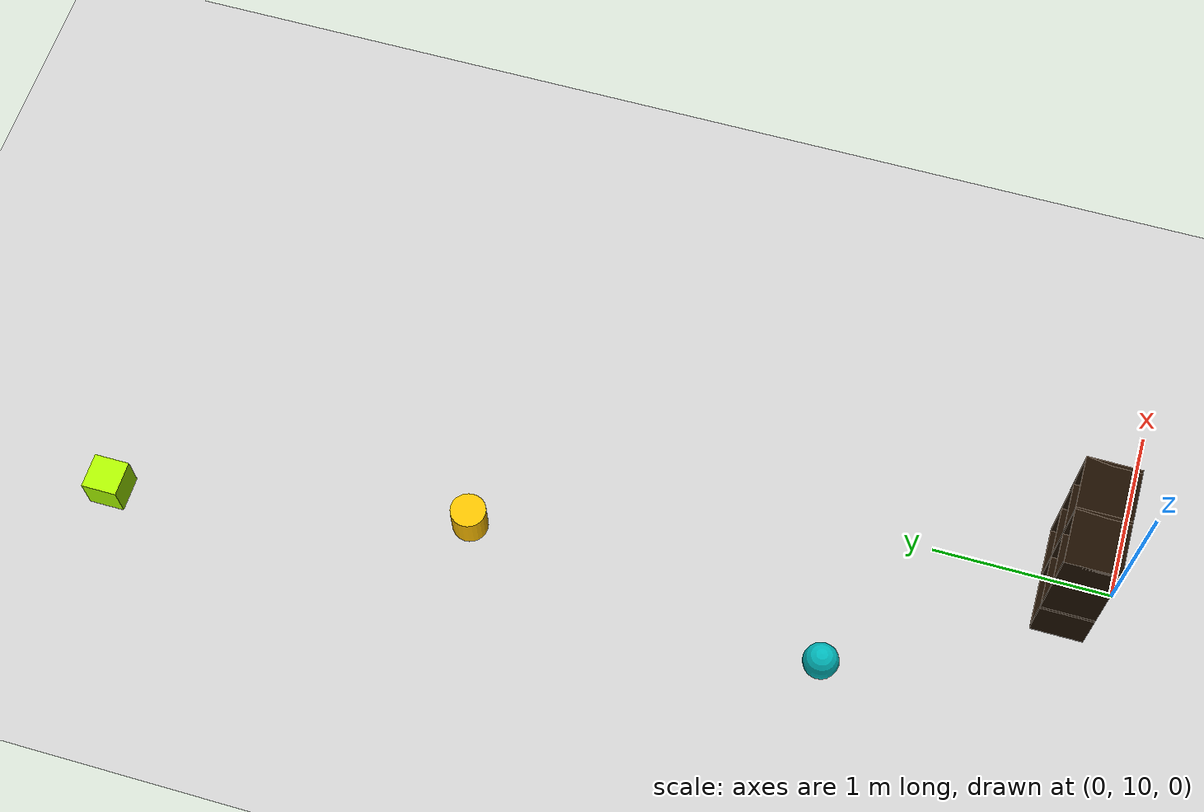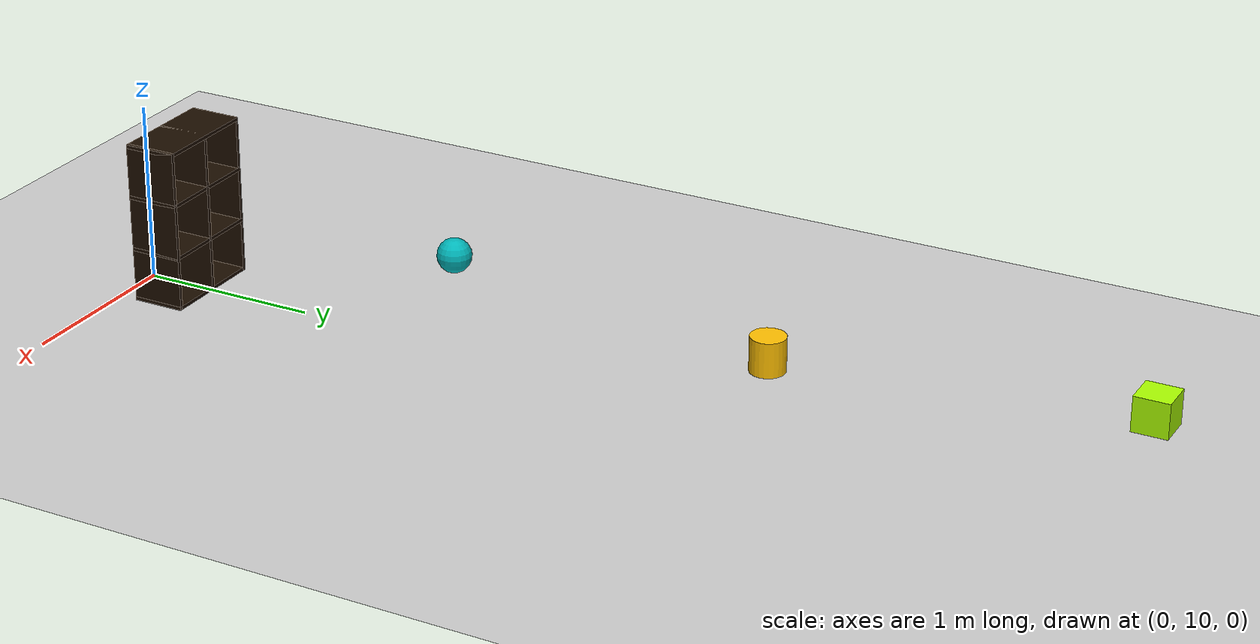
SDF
<sdf version="1.6">
 <world name="default">
  <model name="ground_plane">
   <static>1</static>
   <link name="link">
    <collision name="collision">
     <geometry><plane><normal>0 0 1</normal><size>100 100</size></plane></geometry>
     <surface><friction><ode><mu>100</mu><mu2>50</mu2></ode></friction></surface>
    </collision>
    <visual name="visual">
     <cast_shadows>0</cast_shadows>
     <geometry><plane><normal>0 0 1</normal><size>100 100</size></plane></geometry>
     <material>
      <script><uri>file://media/materials/scripts/gazebo.material</uri><name>Gazebo/Grey</name></script>
     </material>
    </visual>
   </link>
  </model>
  <model name="cube_gy">
   <link name="link_2">
    <pose>0 0 0.1 0 -0 0</pose>
    <inertial>
     <mass>1</mass>
     <inertia>
      <ixx>0.166667</ixx>
      <ixy>0</ixy>
      <ixz>0</ixz>
      <iyy>0.166667</iyy>
      <iyz>0</iyz>
      <izz>0.166667</izz>
     </inertia>
    </inertial>
    <visual name="visual">
     <geometry><box><size>0.2 0.2 0.2</size></box></geometry>
     <material>
      <lighting>1</lighting>
      <script><uri>file://media/materials/scripts/gazebo.material</uri><name>Gazebo/Grey</name></script>
      <ambient>0.675 1 0 1</ambient>
      <diffuse>0.675 1 0 1</diffuse>
      <specular>0 0 0 1</specular>
      <emissive>0 0 0 1</emissive>
      <shader type="vertex"><normal_map>__default__</normal_map></shader>
     </material>
    </visual>
    <collision name="collision">
     <geometry><box><size>0.2 0.2 0.2</size></box></geometry>
     <surface>
      <friction>
       <ode><mu>1</mu><mu2>1</mu2><fdir1>0 0 0</fdir1><slip1>0</slip1><slip2>0</slip2></ode>
       <torsional>
        <coefficient>1</coefficient>
        <patch_radius>0</patch_radius>
        <surface_radius>0</surface_radius>
        <use_patch_radius>1</use_patch_radius>
        <ode><slip>0</slip></ode>
       </torsional>
      </friction>
      <bounce><restitution_coefficient>0</restitution_coefficient><threshold>1e+06</threshold></bounce>
      <contact>
       <collide_without_contact>0</collide_without_contact>
       <collide_without_contact_bitmask>1</collide_without_contact_bitmask>
       <collide_bitmask>1</collide_bitmask>
       <ode>
        <soft_cfm>0</soft_cfm>
        <soft_erp>0.2</soft_erp>
        <kp>1e+13</kp>
        <kd>1</kd>
        <max_vel>0.01</max_vel>
        <min_depth>0</min_depth>
       </ode>
       <bullet>
        <split_impulse>1</split_impulse>
        <split_impulse_penetration_threshold>-0.01</split_impulse_penetration_threshold>
        <soft_cfm>0</soft_cfm>
        <soft_erp>0.2</soft_erp>
        <kp>1e+13</kp>
        <kd>1</kd>
       </bullet>
      </contact>
     </surface>
    </collision>
   </link>
   <static>1</static>
   <pose>-0.915542 15.5 0 0 -0 0</pose>
  </model>
  <model name="cylinder_yo">
   <link name="link_0">
    <pose>0 0 0.1 0 -0 0</pose>
    <inertial>
     <mass>1</mass>
     <inertia><ixx>0.145833</ixx><ixy>0</ixy><ixz>0</ixz><iyy>0.145833</iyy><iyz>0</iyz><izz>0.125</izz></inertia>
    </inertial>
    <visual name="visual">
     <geometry><cylinder><radius>0.1</radius><length>0.2</length></cylinder></geometry>
     <material>
      <lighting>1</lighting>
      <script><uri>file://media/materials/scripts/gazebo.material</uri><name>Gazebo/Grey</name></script>
      <ambient>1 0.749 0 1</ambient>
      <diffuse>1 0.749 0 1</diffuse>
      <specular>0 0 0 1</specular>
      <emissive>0 0 0 1</emissive>
      <shader type="vertex"><normal_map>__default__</normal_map></shader>
     </material>
    </visual>
    <collision name="collision">
     <geometry><cylinder><radius>0.1</radius><length>0.2</length></cylinder></geometry>
     <surface>
      <friction>
       <ode><mu>1</mu><mu2>1</mu2><fdir1>0 0 0</fdir1><slip1>0</slip1><slip2>0</slip2></ode>
       <torsional>
        <coefficient>1</coefficient>
        <patch_radius>0</patch_radius>
        <surface_radius>0</surface_radius>
        <use_patch_radius>1</use_patch_radius>
        <ode><slip>0</slip></ode>
       </torsional>
      </friction>
      <bounce><restitution_coefficient>0</restitution_coefficient><threshold>1e+06</threshold></bounce>
      <contact>
       <collide_without_contact>0</collide_without_contact>
       <collide_without_contact_bitmask>1</collide_without_contact_bitmask>
       <collide_bitmask>1</collide_bitmask>
       <ode>
        <soft_cfm>0</soft_cfm>
        <soft_erp>0.2</soft_erp>
        <kp>1e+13</kp>
        <kd>1</kd>
        <max_vel>0.01</max_vel>
        <min_depth>0</min_depth>
       </ode>
       <bullet>
        <split_impulse>1</split_impulse>
        <split_impulse_penetration_threshold>-0.01</split_impulse_penetration_threshold>
        <soft_cfm>0</soft_cfm>
        <soft_erp>0.2</soft_erp>
        <kp>1e+13</kp>
        <kd>1</kd>
       </bullet>
      </contact>
     </surface>
    </collision>
   </link>
   <static>1</static>
   <pose>-0.565713 13.5084 0 0 -0 0</pose>
  </model>
  <model name="6_Cube_StorageE">
   <link name="Wall_0">
    <pose>0 0 0.01 0 -0 0</pose>
    <inertial>
     <mass>1.6201</mass>
     <inertia><ixx>0.0119</ixx><iyy>0.0631</iyy><izz>0.0513</izz><ixy>0</ixy><ixz>0</ixz><iyz>0</iyz></inertia>
    </inertial>
    <collision name="Wall_0_Collision"><geometry><box><size>0.616 0.296 0.02</size></box></geometry></collision>
    <visual name="Wall_0_Visual">
     <geometry><box><size>0.616 0.296 0.02</size></box></geometry>
     <material>
      <script><uri>file://media/materials/scripts/gazebo.material</uri><name>Gazebo/Grey</name></script>
      <ambient>0.105882 0.0509804 0 1</ambient>
     </material>
    </visual>
   </link>
   <joint name="0_2" type="fixed">
    <pose>-0.308 0 0 0 -0 0</pose>
    <parent>Wall_2</parent>
    <child>Wall_0</child>
    <axis>
     <xyz>1 0 0</xyz>
     <use_parent_model_frame>0</use_parent_model_frame>
     <limit><lower>-1e+16</lower><upper>1e+16</upper></limit>
    </axis>
   </joint>
   <joint name="0_12" type="fixed">
    <parent>Wall_12</parent>
    <child>Wall_0</child>
    <axis>
     <xyz>0 0 1</xyz>
     <use_parent_model_frame>0</use_parent_model_frame>
     <limit><lower>-1e+16</lower><upper>1e+16</upper></limit>
    </axis>
   </joint>
   <joint name="0_4" type="fixed">
    <pose>0.308 0 0 0 -0 0</pose>
    <parent>Wall_4</parent>
    <child>Wall_0</child>
    <axis>
     <xyz>1 0 0</xyz>
     <use_parent_model_frame>0</use_parent_model_frame>
     <limit><lower>-1e+16</lower><upper>1e+16</upper></limit>
    </axis>
   </joint>
   <link name="Wall_10">
    <pose>0 0 0.61 0 -0 0</pose>
    <inertial>
     <mass>1.6201</mass>
     <inertia><ixx>0.0119</ixx><iyy>0.0631</iyy><izz>0.0513</izz><ixy>0</ixy><ixz>0</ixz><iyz>0</iyz></inertia>
    </inertial>
    <collision name="Wall_10_Collision"><geometry><box><size>0.616 0.296 0.02</size></box></geometry></collision>
    <visual name="Wall_10_Visual">
     <geometry><box><size>0.616 0.296 0.02</size></box></geometry>
     <material>
      <script><uri>file://media/materials/scripts/gazebo.material</uri><name>Gazebo/Grey</name></script>
      <ambient>0.105882 0.0509804 0 1</ambient>
     </material>
    </visual>
   </link>
   <joint name="10_2" type="fixed">
    <pose>-0.308 0 0 0 -0 0</pose>
    <parent>Wall_2</parent>
    <child>Wall_10</child>
    <axis>
     <xyz>1 0 0</xyz>
     <use_parent_model_frame>0</use_parent_model_frame>
     <limit><lower>-1e+16</lower><upper>1e+16</upper></limit>
    </axis>
   </joint>
   <joint name="10_12" type="fixed">
    <parent>Wall_12</parent>
    <child>Wall_10</child>
    <axis>
     <xyz>0 0 1</xyz>
     <use_parent_model_frame>0</use_parent_model_frame>
     <limit><lower>-1e+16</lower><upper>1e+16</upper></limit>
    </axis>
   </joint>
   <joint name="10_4" type="fixed">
    <pose>0.308 0 0 0 -0 0</pose>
    <parent>Wall_4</parent>
    <child>Wall_10</child>
    <axis>
     <xyz>1 0 0</xyz>
     <use_parent_model_frame>0</use_parent_model_frame>
     <limit><lower>-1e+16</lower><upper>1e+16</upper></limit>
    </axis>
   </joint>
   <link name="Wall_12">
    <pose>0 0 0.4575 0 -0 0</pose>
    <inertial>
     <mass>2.4065</mass>
     <inertia><ixx>0.0177</ixx><iyy>0.1855</iyy><izz>0.168</izz><ixy>0</ixy><ixz>0</ixz><iyz>0</iyz></inertia>
    </inertial>
    <collision name="Wall_12_Collision"><geometry><box><size>0.02 0.296 0.915</size></box></geometry></collision>
    <visual name="Wall_12_Visual">
     <geometry><box><size>0.02 0.296 0.915</size></box></geometry>
     <material>
      <script><uri>file://media/materials/scripts/gazebo.material</uri><name>Gazebo/Grey</name></script>
      <ambient>0.105882 0.0509804 0 1</ambient>
     </material>
    </visual>
   </link>
   <link name="Wall_2">
    <pose>-0.298 0 0.4575 0 -0 0</pose>
    <inertial>
     <mass>2.4065</mass>
     <inertia><ixx>0.0177</ixx><iyy>0.1855</iyy><izz>0.168</izz><ixy>0</ixy><ixz>0</ixz><iyz>0</iyz></inertia>
    </inertial>
    <collision name="Wall_2_Collision"><geometry><box><size>0.02 0.296 0.915</size></box></geometry></collision>
    <visual name="Wall_2_Visual">
     <geometry><box><size>0.02 0.296 0.915</size></box></geometry>
     <material>
      <script><uri>file://media/materials/scripts/gazebo.material</uri><name>Gazebo/Grey</name></script>
      <ambient>0.105882 0.0509804 0 1</ambient>
     </material>
    </visual>
   </link>
   <link name="Wall_4">
    <pose>0.298 0 0.4575 0 -0 0</pose>
    <inertial>
     <mass>2.4065</mass>
     <inertia><ixx>0.0177</ixx><iyy>0.1855</iyy><izz>0.168</izz><ixy>0</ixy><ixz>0</ixz><iyz>0</iyz></inertia>
    </inertial>
    <collision name="Wall_4_Collision"><geometry><box><size>0.02 0.296 0.915</size></box></geometry></collision>
    <visual name="Wall_4_Visual">
     <geometry><box><size>0.02 0.296 0.915</size></box></geometry>
     <material>
      <script><uri>file://media/materials/scripts/gazebo.material</uri><name>Gazebo/Grey</name></script>
      <ambient>0.105882 0.0509804 0 1</ambient>
     </material>
    </visual>
   </link>
   <link name="Wall_6">
    <pose>0 0 0.905 0 -0 0</pose>
    <inertial>
     <mass>1.6201</mass>
     <inertia><ixx>0.0119</ixx><iyy>0.0631</iyy><izz>0.0513</izz><ixy>0</ixy><ixz>0</ixz><iyz>0</iyz></inertia>
    </inertial>
    <collision name="Wall_6_Collision"><geometry><box><size>0.616 0.296 0.02</size></box></geometry></collision>
    <visual name="Wall_6_Visual">
     <geometry><box><size>0.616 0.296 0.02</size></box></geometry>
     <material>
      <script><uri>file://media/materials/scripts/gazebo.material</uri><name>Gazebo/Grey</name></script>
      <ambient>0.105882 0.0509804 0 1</ambient>
     </material>
    </visual>
   </link>
   <joint name="6_2" type="fixed">
    <pose>-0.308 0 0 0 -0 0</pose>
    <parent>Wall_2</parent>
    <child>Wall_6</child>
    <axis>
     <xyz>2 0 0</xyz>
     <use_parent_model_frame>0</use_parent_model_frame>
     <limit><lower>-1e+16</lower><upper>1e+16</upper></limit>
    </axis>
   </joint>
   <joint name="6_12" type="fixed">
    <parent>Wall_12</parent>
    <child>Wall_6</child>
    <axis>
     <xyz>0 0 1</xyz>
     <use_parent_model_frame>0</use_parent_model_frame>
     <limit><lower>-1e+16</lower><upper>1e+16</upper></limit>
    </axis>
   </joint>
   <joint name="6_4" type="fixed">
    <pose>0.308 0 0 0 -0 0</pose>
    <parent>Wall_4</parent>
    <child>Wall_6</child>
    <axis>
     <xyz>1 0 0</xyz>
     <use_parent_model_frame>0</use_parent_model_frame>
     <limit><lower>-1e+16</lower><upper>1e+16</upper></limit>
    </axis>
   </joint>
   <link name="Wall_8">
    <pose>0 0 0.305 0 -0 0</pose>
    <inertial>
     <mass>1.6201</mass>
     <inertia><ixx>0.0119</ixx><iyy>0.0631</iyy><izz>0.0513</izz><ixy>0</ixy><ixz>0</ixz><iyz>0</iyz></inertia>
    </inertial>
    <collision name="Wall_8_Collision"><geometry><box><size>0.616 0.296 0.02</size></box></geometry></collision>
    <visual name="Wall_8_Visual">
     <geometry><box><size>0.616 0.296 0.02</size></box></geometry>
     <material>
      <script><uri>file://media/materials/scripts/gazebo.material</uri><name>Gazebo/Grey</name></script>
      <ambient>0.105882 0.0509804 0 1</ambient>
     </material>
    </visual>
   </link>
   <joint name="8_2" type="fixed">
    <pose>-0.308 0 0 0 -0 0</pose>
    <parent>Wall_2</parent>
    <child>Wall_8</child>
    <axis>
     <xyz>1 0 0</xyz>
     <use_parent_model_frame>0</use_parent_model_frame>
     <limit><lower>-1e+16</lower><upper>1e+16</upper></limit>
    </axis>
   </joint>
   <joint name="8_12" type="fixed">
    <parent>Wall_12</parent>
    <child>Wall_8</child>
    <axis>
     <xyz>0 0 1</xyz>
     <use_parent_model_frame>0</use_parent_model_frame>
     <limit><lower>-1e+16</lower><upper>1e+16</upper></limit>
    </axis>
   </joint>
   <joint name="8_4" type="fixed">
    <pose>0.308 0 0 0 -0 0</pose>
    <parent>Wall_4</parent>
    <child>Wall_8</child>
    <axis>
     <xyz>1 0 0</xyz>
     <use_parent_model_frame>0</use_parent_model_frame>
     <limit><lower>-1e+16</lower><upper>1e+16</upper></limit>
    </axis>
   </joint>
   <static>1</static>
   <pose>0 10.25 0 0 -0 0</pose>
  </model>
  <model name="sphere_bg">
   <link name="link_1">
    <pose>0 0 0.1 0 -0 0</pose>
    <inertial>
     <mass>1</mass>
     <inertia><ixx>0.1</ixx><ixy>0</ixy><ixz>0</ixz><iyy>0.1</iyy><iyz>0</iyz><izz>0.1</izz></inertia>
    </inertial>
    <visual name="visual">
     <geometry><sphere><radius>0.1</radius></sphere></geometry>
     <material>
      <lighting>1</lighting>
      <script><uri>file://media/materials/scripts/gazebo.material</uri><name>Gazebo/Grey</name></script>
      <ambient>0 0.71 0.722 1</ambient>
      <diffuse>0 0.71 0.722 1</diffuse>
      <specular>0 0 0 1</specular>
      <emissive>0 0 0 1</emissive>
      <shader type="vertex"><normal_map>__default__</normal_map></shader>
     </material>
    </visual>
    <collision name="collision">
     <geometry><sphere><radius>0.1</radius></sphere></geometry>
     <surface>
      <friction>
       <ode><mu>1</mu><mu2>1</mu2><fdir1>0 0 0</fdir1><slip1>0</slip1><slip2>0</slip2></ode>
       <torsional>
        <coefficient>1</coefficient>
        <patch_radius>0</patch_radius>
        <surface_radius>0</surface_radius>
        <use_patch_radius>1</use_patch_radius>
        <ode><slip>0</slip></ode>
       </torsional>
      </friction>
      <bounce><restitution_coefficient>0</restitution_coefficient><threshold>1e+06</threshold></bounce>
      <contact>
       <collide_without_contact>0</collide_without_contact>
       <collide_without_contact_bitmask>1</collide_without_contact_bitmask>
       <collide_bitmask>1</collide_bitmask>
       <ode>
        <soft_cfm>0</soft_cfm>
        <soft_erp>0.2</soft_erp>
        <kp>1e+13</kp>
        <kd>1</kd>
        <max_vel>0.01</max_vel>
        <min_depth>0</min_depth>
       </ode>
       <bullet>
        <split_impulse>1</split_impulse>
        <split_impulse_penetration_threshold>-0.01</split_impulse_penetration_threshold>
        <soft_cfm>0</soft_cfm>
        <soft_erp>0.2</soft_erp>
        <kp>1e+13</kp>
        <kd>1</kd>
       </bullet>
      </contact>
     </surface>
    </collision>
   </link>
   <static>1</static>
   <pose>-0.844132 11.4427 0 0 -0 0</pose>
  </model>
 </world>
</sdf>
